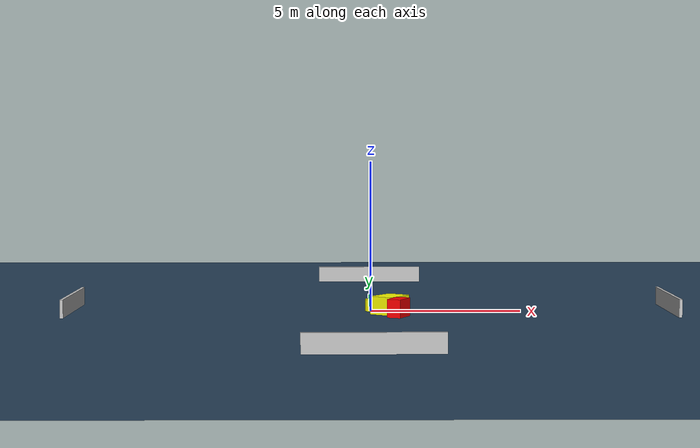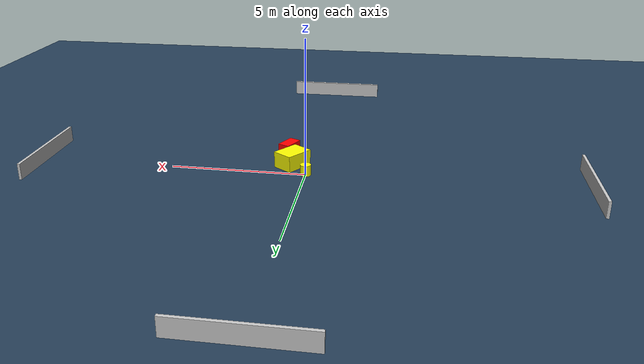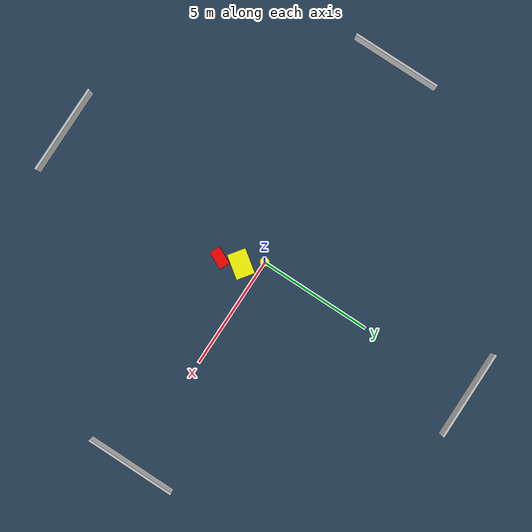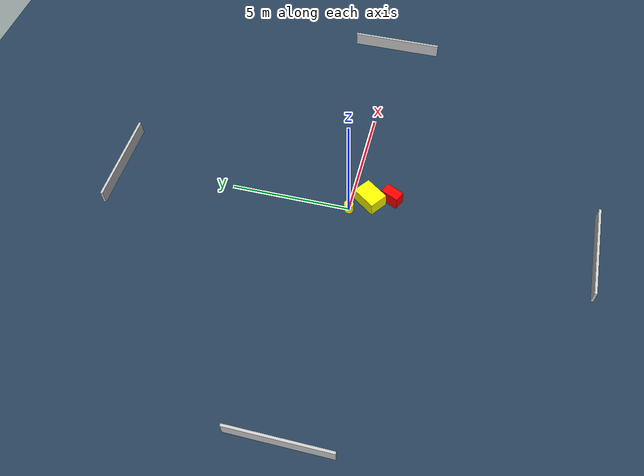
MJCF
<?xml version="1.0" ?>
<mujoco model="generated_environment">
  <option timestep="0.01" integrator="RK4" cone="elliptic"/>
  <default>
    <geom density="1"/>
  </default>
  <asset>
    <texture builtin="gradient" height="3072" name="skybox" rgb1="0.3 0.5 0.7" rgb2="0 0 0" type="skybox" width="512"/>
    <texture builtin="checker" height="300" name="groundplane" rgb1="0.2 0.3 0.4" rgb2="0.1 0.2 0.3" type="2d" width="300"/>
    <material name="groundplane" reflectance="0.2" texrepeat="5 5" texture="groundplane"/>
  </asset>
  <worldbody>
    <light dir="0 0 -1" directional="true" pos="0 0 1.5"/>
    <geom condim="3" friction="0.5 0.005 0.001" material="groundplane" name="floor" pos="0 0 0" size="0 0 0.05" type="plane"/>
    <body name="walls">
      <geom name="wall_1" condim="4" pos="-10.0 0.0 0.3" rgba="0.800000011920929 0.800000011920929 0.800000011920929 1.0" size="0.05 2.0 0.3" type="box"/>
      <geom name="wall_2" condim="4" pos="10.0 0.0 0.3" rgba="0.800000011920929 0.800000011920929 0.800000011920929 1.0" size="0.05 2.0 0.3" type="box"/>
      <geom name="wall_3" condim="4" pos="0.0 -10.0 0.3" rgba="0.800000011920929 0.800000011920929 0.800000011920929 1.0" size="2.0 0.05 0.3" type="box"/>
      <geom name="wall_4" condim="4" pos="0.0 10.0 0.3" rgba="0.800000011920929 0.800000011920929 0.800000011920929 1.0" size="2.0 0.05 0.3" type="box"/>
    </body>
    <body name="robot">
      <joint name="joint_x" type="slide" pos="0 0 0" axis="1 0 0"/>
      <joint name="joint_y" type="slide" pos="0 0 0" axis="0 1 0"/>
      <geom name="robot" type="cylinder" pos="0.0 0.0 0.2" size="0.2 0.2 0.0" mass="5.0" friction="1.0 0.005 0.0001" condim="4" rgba="1.0 1.0 0.0 1.0"/>
    </body>
    <body name="obstacle_1_movable">
      <geom name="obstacle_1_movable" condim="4" pos="0.6126597679012903 -0.7602177623158487 0.3" euler="0 0 54.08565612005957" friction="0.0 0.005 0.001" rgba="1.0 1.0 0.0 1.0" size="0.5460274903036424 0.40048786651713386 0.3" type="box" mass="0.1"/>
      <joint type="free"/>
    </body>
    <body name="obstacle_2_static">
      <geom name="obstacle_2_static" condim="4" pos="0.8805117792200166 -1.6362304178713911 0.3" euler="0 0 334.6893382976967" friction="0.0 0.005 0.001" rgba="1.0 0.0 0.0 1.0" size="0.22910911358947042 0.39469412294845285 0.3" type="box"/>
    </body>
  </worldbody>
  <actuator>
    <motor name="actuator_x" joint="joint_x" gear="1" ctrlrange="-1 1"/>
    <motor name="actuator_y" joint="joint_y" gear="1" ctrlrange="-1 1"/>
  </actuator>
</mujoco>
